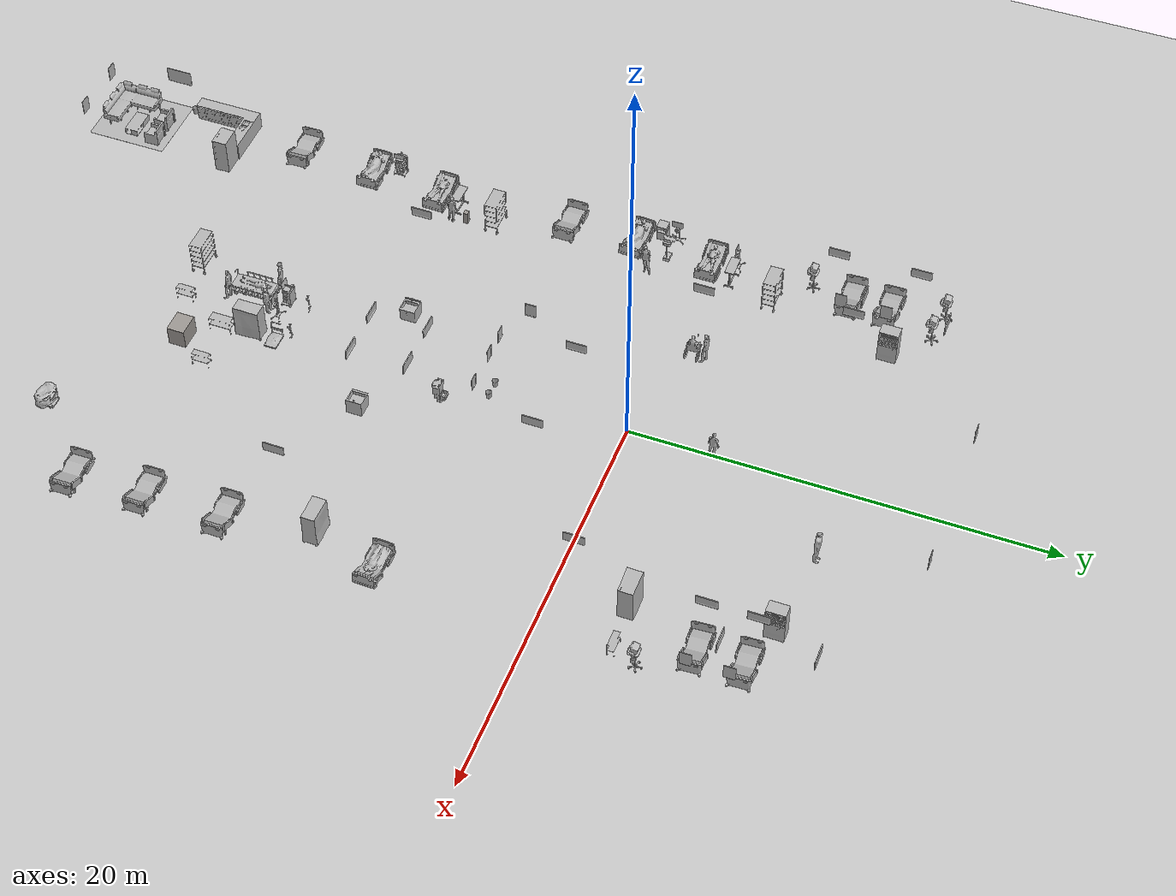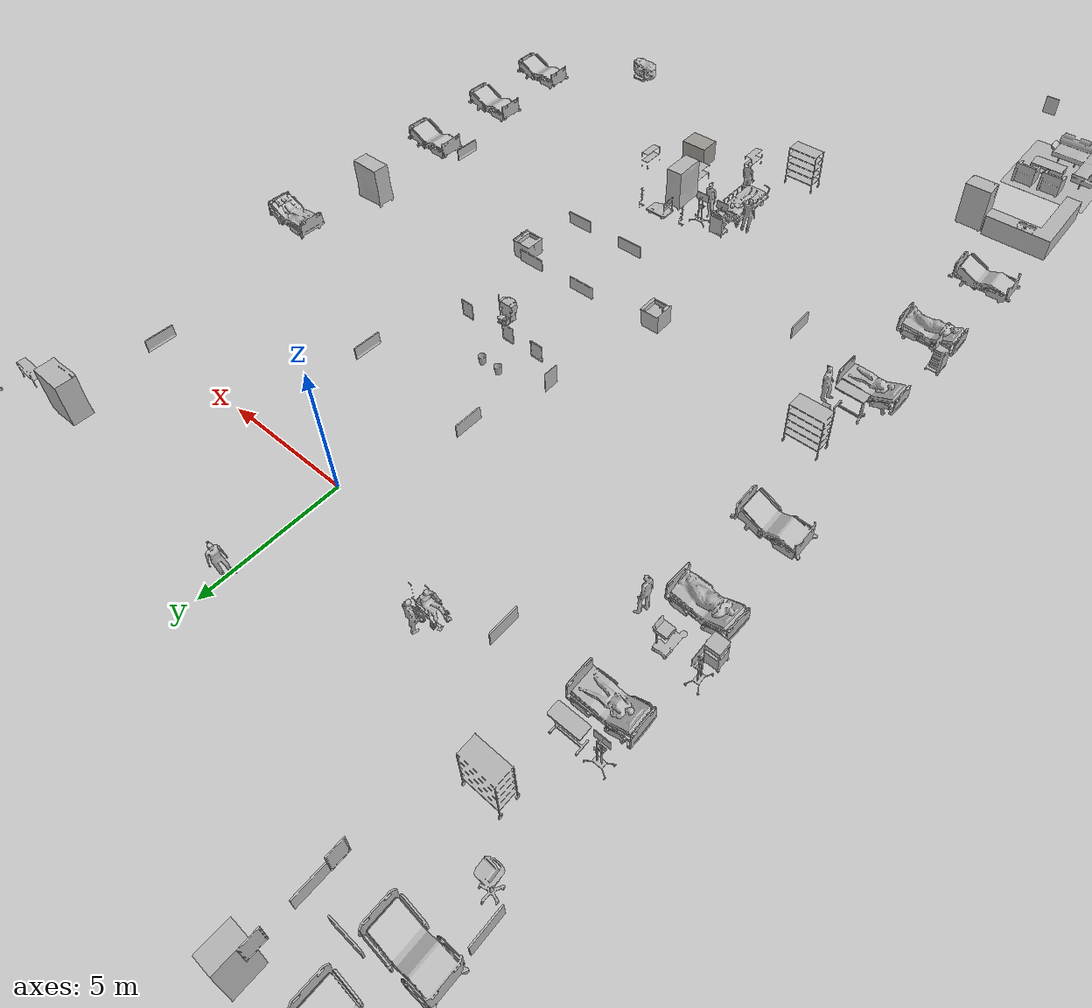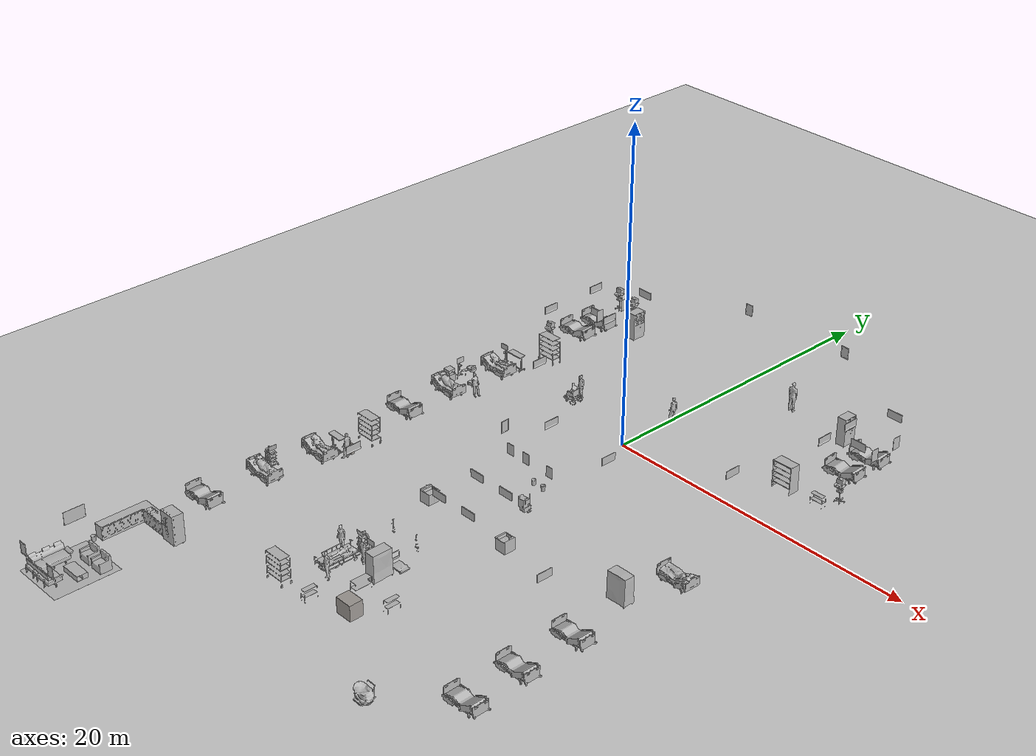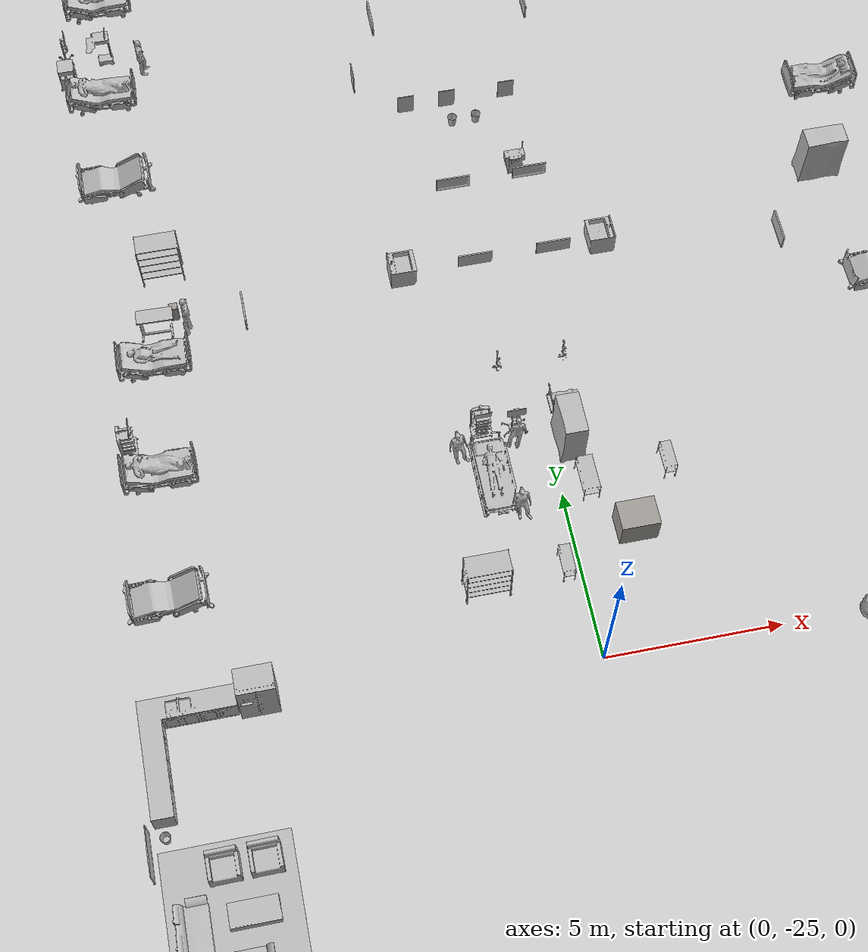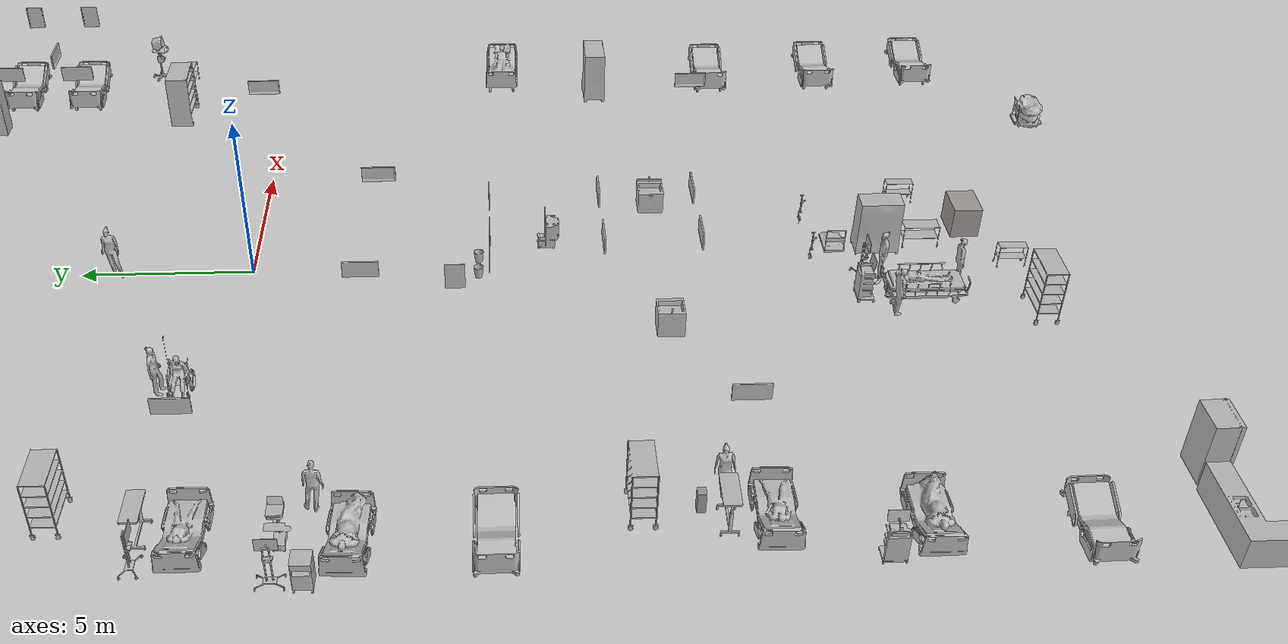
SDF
<sdf version="1.6">
 <world name="world">
  <gravity>0 0 -9.8</gravity>
  <physics default="0" name="default_physics" type="ode">
   <ode>
    <solver>
     <type>quick</type>
     <iters>10</iters>
     <sor>1.3</sor>
     <use_dynamic_moi_rescaling>0</use_dynamic_moi_rescaling>
    </solver>
    <constraints>
     <cfm>0</cfm>
     <erp>0.2</erp>
     <contact_max_correcting_vel>100</contact_max_correcting_vel>
     <contact_surface_layer>0.001</contact_surface_layer>
    </constraints>
   </ode>
   <max_step_size>0.004</max_step_size>
   <real_time_factor>1</real_time_factor>
   <real_time_update_rate>250</real_time_update_rate>
   <magnetic_field>6.0e-6 2.3e-5 -4.2e-5</magnetic_field>
  </physics>
  <scene><ambient>0.6 0.6 0.6 1</ambient><background>0.4 0.4 0.4 1</background><shadows>false</shadows></scene>
  <include><uri>model://sun</uri></include>
  <include><uri>model://ground_plane</uri><pose>0 0 -0.1 0 -0 0</pose></include>
  <model name="CGMClassic_1">
   <include>
    <uri>model://CGMClassic</uri>
    <static>true</static>
    <pose>11.1777 -18.4129 0 0 0 -3.13719</pose>
   </include>
  </model>
  <model name="CGMClassic_2">
   <include>
    <uri>model://CGMClassic</uri>
    <static>true</static>
    <pose>11.1179 -14.6493 0 0 0 -3.13599</pose>
   </include>
  </model>
  <model name="Scrubs_1">
   <include><uri>model://Scrubs</uri><static>true</static><pose>-9.61916 -12.5112 0 0 0 -3.12353</pose></include>
  </model>
  <model name="Scrubs_2">
   <include><uri>model://Scrubs</uri><static>true</static><pose>0.054597 4.05849 0 0 -0 3.12413</pose></include>
  </model>
  <model name="PatientWheelChair_1">
   <include>
    <uri>model://PatientWheelChair</uri>
    <static>true</static>
    <pose>-5.46091 1.23577 0 0 0 -1.54828</pose>
   </include>
  </model>
  <model name="Scrubs_3">
   <include><uri>model://Scrubs</uri><static>true</static><pose>-5.38513 1.82526 0 0 0 -1.63757</pose></include>
  </model>
  <model name="SurgicalTrolley_1">
   <include>
    <uri>model://SurgicalTrolley</uri>
    <static>true</static>
    <pose>11.4301 3.56328 0 0 -0 0</pose>
   </include>
  </model>
  <model name="CGMClassic_3">
   <include>
    <uri>model://CGMClassic</uri>
    <static>true</static>
    <pose>-11.2304 -21.1134 0 0 0 -3.11834</pose>
   </include>
  </model>
  <model name="aws_robomaker_residential_CoffeeTable_01_1">
   <include>
    <uri>model://aws_robomaker_residential_CoffeeTable_01</uri>
    <static>true</static>
    <pose>-10.2383 -29.9144 0 0 -0 0</pose>
   </include>
  </model>
  <model name="aws_robomaker_residential_Sofa_01_1">
   <include>
    <uri>model://aws_robomaker_residential_Sofa_01</uri>
    <static>true</static>
    <pose>-11.077 -30.5544 -1e-05 2.6e-05 -3e-06 1.56984</pose>
   </include>
  </model>
  <model name="aws_robomaker_residential_TV_02_1">
   <include>
    <uri>model://aws_robomaker_residential_TV_02</uri>
    <static>true</static>
    <pose>-12.4122 -28.4594 1.53211 0 -0 3.13999</pose>
   </include>
  </model>
  <model name="aws_robomaker_residential_KitchenCabinet_01_1">
   <include>
    <uri>model://aws_robomaker_residential_KitchenCabinet_01</uri>
    <static>true</static>
    <pose>-11.1379 -25.6941 0 0 -0 0</pose>
   </include>
  </model>
  <model name="aws_robomaker_residential_Refrigerator_01_1">
   <include>
    <uri>model://aws_robomaker_residential_Refrigerator_01</uri>
    <static>true</static>
    <pose>-9.28238 -24.5015 0 0 -0 0</pose>
   </include>
  </model>
  <model name="aws_robomaker_residential_SofaB_01_1">
   <include>
    <uri>model://aws_robomaker_residential_SofaB_01</uri>
    <static>true</static>
    <pose>-10.8238 -28.6662 -5e-06 -1.3e-05 -2e-06 -1.56116</pose>
   </include>
  </model>
  <model name="aws_robomaker_residential_SofaB_01_2">
   <include>
    <uri>model://aws_robomaker_residential_SofaB_01</uri>
    <static>true</static>
    <pose>-9.73697 -28.6538 -3e-06 1.3e-05 -4e-06 -1.56077</pose>
   </include>
  </model>
  <model name="aws_robomaker_residential_PortraitA_01_1">
   <include>
    <uri>model://aws_robomaker_residential_PortraitA_01</uri>
    <static>true</static>
    <pose>1.14738 -6.92303 1.41115 0 -0 0</pose>
   </include>
  </model>
  <model name="aws_robomaker_residential_PortraitD_02_1">
   <include>
    <uri>model://aws_robomaker_residential_PortraitD_02</uri>
    <static>true</static>
    <pose>2.40772 -3.61975 1.54508 0 0 -1.57619</pose>
   </include>
  </model>
  <model name="MopCart3_1">
   <include>
    <uri>model://MopCart3</uri>
    <static>true</static>
    <pose>1.07736 -8.59036 -6.7e-05 0 1e-06 0</pose>
   </include>
  </model>
  <model name="aws_robomaker_residential_PortraitA_01_2">
   <include>
    <uri>model://aws_robomaker_residential_PortraitA_01</uri>
    <static>true</static>
    <pose>-0.706092 -6.93108 1.41115 0 -0 0</pose>
   </include>
  </model>
  <model name="aws_robomaker_residential_PortraitA_01_3">
   <include>
    <uri>model://aws_robomaker_residential_PortraitA_01</uri>
    <static>true</static>
    <pose>-1.97245 -6.9216 1.41115 0 -0 0</pose>
   </include>
  </model>
  <model name="aws_robomaker_residential_PortraitD_02_2">
   <include>
    <uri>model://aws_robomaker_residential_PortraitD_02</uri>
    <static>true</static>
    <pose>-2.43341 -3.38621 1.54508 0 -0 1.57083</pose>
   </include>
  </model>
  <model name="ElderLadyPatient_1">
   <include>
    <uri>model://ElderLadyPatient</uri>
    <static>true</static>
    <pose>-10.9972 0.231354 0.001654 0 -0 0</pose>
   </include>
  </model>
  <model name="ElderLadyPatient_2">
   <include>
    <uri>model://ElderLadyPatient</uri>
    <static>true</static>
    <pose>-10.8133 -13.5925 0.001657 0 -2e-06 -0.025052</pose>
   </include>
  </model>
  <model name="CGMClassic_4">
   <include>
    <uri>model://CGMClassic</uri>
    <static>true</static>
    <pose>-11.0878 -7.00992 0 0 -0 3.1351</pose>
   </include>
  </model>
  <model name="aws_robomaker_residential_Trash_01_1">
   <include>
    <uri>model://aws_robomaker_residential_Trash_01</uri>
    <static>true</static>
    <pose>0.316178 -6.58235 0.000903 0 -2e-06 0</pose>
   </include>
  </model>
  <model name="aws_robomaker_residential_Trash_01_2">
   <include>
    <uri>model://aws_robomaker_residential_Trash_01</uri>
    <static>true</static>
    <pose>-0.436645 -6.57758 0.000903 -1e-06 -1e-06 0</pose>
   </include>
  </model>
  <model name="aws_robomaker_residential_Trash_01_3">
   <include>
    <uri>model://aws_robomaker_residential_Trash_01</uri>
    <static>true</static>
    <pose>-12.1773 -27.6293 0.000894 -1e-06 -1e-06 0</pose>
   </include>
  </model>
  <model name="aws_robomaker_residential_PortraitE_01_1">
   <include>
    <uri>model://aws_robomaker_residential_PortraitE_01</uri>
    <static>true</static>
    <pose>-9.06141 -31.9238 1.38136 0 -0 0</pose>
   </include>
  </model>
  <model name="aws_robomaker_residential_PortraitE_01_2">
   <include>
    <uri>model://aws_robomaker_residential_PortraitE_01</uri>
    <static>true</static>
    <pose>-11.7398 -31.9011 1.38136 0 -0 0</pose>
   </include>
  </model>
  <model name="InstrumentCart1_1">
   <include>
    <uri>model://InstrumentCart1</uri>
    <static>true</static>
    <pose>-11.8071 -16.1825 0 0 -0 1.56702</pose>
   </include>
  </model>
  <model name="ElderMalePatient_1">
   <include>
    <uri>model://ElderMalePatient</uri>
    <static>true</static>
    <pose>-11.1165 -17.2377 0.001656 0 3e-06 0</pose>
   </include>
  </model>
  <model name="InstrumentCart2_1">
   <include>
    <uri>model://InstrumentCart2</uri>
    <static>true</static>
    <pose>-12.0906 -1.87329 0.051875 0 -0 1.57773</pose>
   </include>
  </model>
  <model name="InstrumentCart2_2">
   <include>
    <uri>model://InstrumentCart2</uri>
    <static>true</static>
    <pose>-11.5231 1.34237 0 0 -0 0</pose>
   </include>
  </model>
  <model name="aws_robomaker_residential_Carpet_01_1">
   <include>
    <uri>model://aws_robomaker_residential_Carpet_01</uri>
    <static>true</static>
    <pose>-10.7338 -29.9243 0 0 -0 0</pose>
   </include>
  </model>
  <model name="CGMClassic_5">
   <include>
    <uri>model://CGMClassic</uri>
    <static>true</static>
    <pose>-11.0106 8.9505 -0.008203 -0.035019 -0.000392 3.13388</pose>
   </include>
  </model>
  <model name="CGMClassic_6">
   <include>
    <uri>model://CGMClassic</uri>
    <static>true</static>
    <pose>-11.025 7.10335 0 -0.035021 1.8e-05 -3.13762</pose>
   </include>
  </model>
  <model name="BedTable_1">
   <include>
    <uri>model://BedTable</uri>
    <static>true</static>
    <pose>-10.4759 1.39442 0.001184 0 -3e-06 0</pose>
   </include>
  </model>
  <model name="BedTable_2">
   <include>
    <uri>model://BedTable</uri>
    <static>true</static>
    <pose>-10.5874 -12.5084 0.001189 0 -0 3.11588</pose>
   </include>
  </model>
  <model name="BedsideTable_1">
   <include>
    <uri>model://BedsideTable</uri>
    <static>true</static>
    <pose>-12.1499 -2.63111 0.00018 1e-06 -0 -0.00878</pose>
   </include>
  </model>
  <model name="TrolleyBedPatient_1">
   <include>
    <uri>model://TrolleyBedPatient</uri>
    <static>true</static>
    <pose>-1.83202 -19.2612 0 0 -0 0</pose>
   </include>
  </model>
  <model name="Scrubs_4">
   <include><uri>model://Scrubs</uri><static>true</static><pose>-0.93616 -18.2252 0 0 -0 1.62572</pose></include>
  </model>
  <model name="Shower_1">
   <include><uri>model://Shower</uri><static>true</static><pose>-1.07422 -16.1332 0 0 -0 0</pose></include>
  </model>
  <model name="Shower_2">
   <include><uri>model://Shower</uri><static>true</static><pose>0.853327 -16.1492 0 0 -0 0</pose></include>
  </model>
  <model name="SurgicalTrolley_2">
   <include>
    <uri>model://SurgicalTrolley</uri>
    <static>true</static>
    <pose>-0.411421 -22.2085 0 0 0 -1.58175</pose>
   </include>
  </model>
  <model name="SurgicalTrolley_3">
   <include>
    <uri>model://SurgicalTrolley</uri>
    <static>true</static>
    <pose>3.11747 -19.6565 0 0 -0 1.57031</pose>
   </include>
  </model>
  <model name="SurgicalTrolleyMed_1">
   <include>
    <uri>model://SurgicalTrolleyMed</uri>
    <static>true</static>
    <pose>0.770804 -19.7749 0 0 0 -1.56798</pose>
   </include>
  </model>
  <model name="Scrubs_5">
   <include>
    <uri>model://Scrubs</uri>
    <static>true</static>
    <pose>-2.66657 -18.3733 0 -0.002221 -0.006608 -1.24025</pose>
   </include>
  </model>
  <model name="InstrumentCart1_2">
   <include>
    <uri>model://InstrumentCart1</uri>
    <static>true</static>
    <pose>-11.8071 -16.1825 0 0 -0 1.56702</pose>
   </include>
  </model>
  <model name="InstrumentCart2_3">
   <include>
    <uri>model://InstrumentCart2</uri>
    <static>true</static>
    <pose>-0.869537 -17.7436 0 0 0 -0.002595</pose>
   </include>
  </model>
  <model name="StorageRackCovered_1">
   <include>
    <uri>model://StorageRackCovered</uri>
    <static>true</static>
    <pose>0.546476 -18.3985 -0 0 -0 1.56584</pose>
   </include>
  </model>
  <model name="StorageRack_2">
   <include>
    <uri>model://StorageRack</uri>
    <static>true</static>
    <pose>-2.69866 -22.4178 -8e-06 0 4e-06 0</pose>
   </include>
  </model>
  <model name="KitchenSink_1">
   <include>
    <uri>model://KitchenSink</uri>
    <static>true</static>
    <pose>3.06236 -11.8809 -0.001614 0 -0 3.1391</pose>
   </include>
  </model>
  <model name="KitchenSink_2">
   <include>
    <uri>model://KitchenSink</uri>
    <static>true</static>
    <pose>-3.09305 -11.8988 -0.001609 0 -0 0</pose>
   </include>
  </model>
  <model name="aws_robomaker_residential_PortraitD_01_1">
   <include>
    <uri>model://aws_robomaker_residential_PortraitD_01</uri>
    <static>true</static>
    <pose>-1.14723 -10.143 1.57344 0 -0 0</pose>
   </include>
  </model>
  <model name="aws_robomaker_residential_PortraitD_01_2">
   <include>
    <uri>model://aws_robomaker_residential_PortraitD_01</uri>
    <static>true</static>
    <pose>1.16956 -10.1327 1.57344 0 -0 0</pose>
   </include>
  </model>
  <model name="aws_robomaker_residential_PortraitD_01_3">
   <include>
    <uri>model://aws_robomaker_residential_PortraitD_01</uri>
    <static>true</static>
    <pose>1.2703 -12.9084 1.57344 0 0 -3.14134</pose>
   </include>
  </model>
  <model name="aws_robomaker_residential_PortraitD_01_4">
   <include>
    <uri>model://aws_robomaker_residential_PortraitD_01</uri>
    <static>true</static>
    <pose>-1.06108 -12.9155 1.57344 0 0 -3.14134</pose>
   </include>
  </model>
  <model name="aws_robomaker_residential_PortraitD_02_3">
   <include>
    <uri>model://aws_robomaker_residential_PortraitD_02</uri>
    <static>true</static>
    <pose>7.89294 -13.6155 1.54508 0 0 -1.57619</pose>
   </include>
  </model>
  <model name="aws_robomaker_residential_PortraitD_02_4">
   <include>
    <uri>model://aws_robomaker_residential_PortraitD_02</uri>
    <static>true</static>
    <pose>7.88791 0.445446 1.54508 0 0 -1.57619</pose>
   </include>
  </model>
  <model name="aws_robomaker_residential_PortraitD_02_5">
   <include>
    <uri>model://aws_robomaker_residential_PortraitD_02</uri>
    <static>true</static>
    <pose>-7.92095 0.84255 1.54508 0 -0 1.57083</pose>
   </include>
  </model>
  <model name="aws_robomaker_residential_PortraitD_02_6">
   <include>
    <uri>model://aws_robomaker_residential_PortraitD_02</uri>
    <static>true</static>
    <pose>-7.90937 -13.3417 1.54508 0 -0 1.57083</pose>
   </include>
  </model>
  <model name="aws_robomaker_residential_PortraitD_02_7">
   <include>
    <uri>model://aws_robomaker_residential_PortraitD_02</uri>
    <static>true</static>
    <pose>-12.3841 6.01232 1.54508 0 -0 1.57083</pose>
   </include>
  </model>
  <model name="aws_robomaker_residential_PortraitD_02_8">
   <include>
    <uri>model://aws_robomaker_residential_PortraitD_02</uri>
    <static>true</static>
    <pose>-12.4276 9.98828 1.54508 0 -0 1.57083</pose>
   </include>
  </model>
  <model name="aws_robomaker_residential_PortraitE_02_1">
   <include>
    <uri>model://aws_robomaker_residential_PortraitE_02</uri>
    <static>true</static>
    <pose>-9.08927 9.19494 1.84129 0 0 -1.5625</pose>
   </include>
  </model>
  <model name="aws_robomaker_residential_PortraitD_02_9">
   <include>
    <uri>model://aws_robomaker_residential_PortraitD_02</uri>
    <static>true</static>
    <pose>-8.94468 7.73571 1.54508 0 -0 1.57083</pose>
   </include>
  </model>
  <model name="aws_robomaker_residential_PortraitE_02_2">
   <include>
    <uri>model://aws_robomaker_residential_PortraitE_02</uri>
    <static>true</static>
    <pose>-9.08305 7.04089 1.84129 0 0 -1.5625</pose>
   </include>
  </model>
  <model name="aws_robomaker_residential_PortraitD_01_5">
   <include>
    <uri>model://aws_robomaker_residential_PortraitD_01</uri>
    <static>true</static>
    <pose>-9.9148 11.9172 1.40573 0 -0 0</pose>
   </include>
  </model>
  <model name="aws_robomaker_residential_PortraitD_01_6">
   <include>
    <uri>model://aws_robomaker_residential_PortraitD_01</uri>
    <static>true</static>
    <pose>-10.2134 7.89752 1.40573 0 -0 0</pose>
   </include>
  </model>
  <model name="CGMClassic_7">
   <include>
    <uri>model://CGMClassic</uri>
    <static>true</static>
    <pose>10.6166 9.06291 -0.008203 -0.03501 0.000885 -3.11285</pose>
   </include>
  </model>
  <model name="CGMClassic_8">
   <include>
    <uri>model://CGMClassic</uri>
    <static>true</static>
    <pose>10.6006 6.90956 -0.008203 -0.035003 0.001133 -3.10576</pose>
   </include>
  </model>
  <model name="aws_robomaker_residential_PortraitD_02_10">
   <include>
    <uri>model://aws_robomaker_residential_PortraitD_02</uri>
    <static>true</static>
    <pose>9.06517 6.78742 1.54508 0 -0 1.57083</pose>
   </include>
  </model>
  <model name="aws_robomaker_residential_PortraitD_02_11">
   <include>
    <uri>model://aws_robomaker_residential_PortraitD_02</uri>
    <static>true</static>
    <pose>9.06517 9.05858 1.54508 0 -0 1.57083</pose>
   </include>
  </model>
  <model name="aws_robomaker_residential_PortraitE_02_3">
   <include>
    <uri>model://aws_robomaker_residential_PortraitE_02</uri>
    <static>true</static>
    <pose>12.3972 6.98849 1.84129 0 0 -1.5625</pose>
   </include>
  </model>
  <model name="aws_robomaker_residential_PortraitE_02_4">
   <include>
    <uri>model://aws_robomaker_residential_PortraitE_02</uri>
    <static>true</static>
    <pose>12.3972 8.87466 1.84129 0 0 -1.5625</pose>
   </include>
  </model>
  <model name="aws_robomaker_residential_PortraitE_02_5">
   <include>
    <uri>model://aws_robomaker_residential_PortraitE_02</uri>
    <static>true</static>
    <pose>-3.4385 -6.00525 1.84129 0 -0 1.56777</pose>
   </include>
  </model>
  <model name="aws_robomaker_residential_PortraitD_01_7">
   <include>
    <uri>model://aws_robomaker_residential_PortraitD_01</uri>
    <static>true</static>
    <pose>10.596 7.88308 1.40573 0 -0 0</pose>
   </include>
  </model>
  <model name="aws_robomaker_residential_PortraitD_01_8">
   <include>
    <uri>model://aws_robomaker_residential_PortraitD_01</uri>
    <static>true</static>
    <pose>9.98896 11.914 1.40573 0 -0 0</pose>
   </include>
  </model>
  <model name="ParkingTrolleyMin_1">
   <include>
    <uri>model://ParkingTrolleyMin</uri>
    <static>true</static>
    <pose>0.715846 -17.1496 -0.000121 -1e-06 -0 0</pose>
   </include>
  </model>
  <model name="Scrubs_6">
   <include><uri>model://Scrubs</uri><static>true</static><pose>-1.29468 -20.4093 0 0 0 -1.51066</pose></include>
  </model>
  <model name="MalePatientBed_1">
   <include>
    <uri>model://MalePatientBed</uri>
    <static>true</static>
    <pose>11.3771 -7.38891 0.001658 -1e-06 1e-06 3.11598</pose>
   </include>
  </model>
  <model name="CGMClassic_9">
   <include>
    <uri>model://CGMClassic</uri>
    <static>true</static>
    <pose>11.3613 -21.8867 0 0 0 -3.12292</pose>
   </include>
  </model>
  <model name="StorageRackCoverOpen_1">
   <include>
    <uri>model://StorageRackCoverOpen</uri>
    <static>true</static>
    <pose>9.15016 3.44263 -9e-06 1e-06 2e-06 0</pose>
   </include>
  </model>
  <model name="StorageRack_3">
   <include><uri>model://StorageRack</uri><static>true</static><pose>-10.1178 -10.4694 -0 0 -0 0</pose></include>
  </model>
  <model name="StorageRack_4">
   <include>
    <uri>model://StorageRack</uri>
    <static>true</static>
    <pose>-9.91557 3.5644 -9e-06 1e-06 1e-06 -0.000273</pose>
   </include>
  </model>
  <model name="StorageRackCovered_2">
   <include>
    <uri>model://StorageRackCovered</uri>
    <static>true</static>
    <pose>10.294 -10.577 -7e-06 3e-06 -0 3.13389</pose>
   </include>
  </model>
  <model name="InstrumentCart1_3">
   <include>
    <uri>model://InstrumentCart1</uri>
    <static>true</static>
    <pose>-1.83539 -17.5879 0 0 -0 0</pose>
   </include>
  </model>
  <model name="ParkingTrolleyMax_1">
   <include>
    <uri>model://ParkingTrolleyMax</uri>
    <static>true</static>
    <pose>7.71054 -25.1326 -0.000121 1e-06 -0 -1.59536</pose>
   </include>
  </model>
  <model name="ElderMalePatient_2">
   <include>
    <uri>model://ElderMalePatient</uri>
    <static>true</static>
    <pose>-11.2471 -3.5813 0.001656 0 -0 -0.054192</pose>
   </include>
  </model>
  <model name="aws_robomaker_residential_PortraitE_02_6">
   <include>
    <uri>model://aws_robomaker_residential_PortraitE_02</uri>
    <static>true</static>
    <pose>-3.74211 14.8725 1.54379 0 -0 0</pose>
   </include>
  </model>
  <model name="aws_robomaker_residential_PortraitE_01_3">
   <include>
    <uri>model://aws_robomaker_residential_PortraitE_01</uri>
    <static>true</static>
    <pose>3.85701 14.8779 1.69742 0 -0 0</pose>
   </include>
  </model>
  <model name="XRayMachine_1">
   <include><uri>model://XRayMachine</uri><static>true</static><pose>1.79424 -21.3329 0 0 -0 0</pose></include>
  </model>
  <model name="BloodPressureMonitor_1">
   <include>
    <uri>model://BloodPressureMonitor</uri>
    <static>true</static>
    <pose>-9.96258 -11.9361 0 0 -0 0</pose>
   </include>
  </model>
  <model name="BMWCart_1">
   <include><uri>model://BMWCart</uri><static>true</static><pose>-10.931 -1.9483 0 0 -0 0</pose></include>
  </model>
  <model name="Scrubs_7">
   <include><uri>model://Scrubs</uri><static>true</static><pose>-9.75875 -2.67552 0 0 -0 0</pose></include>
  </model>
  <model name="BPCart_1">
   <include>
    <uri>model://BPCart</uri>
    <static>true</static>
    <pose>-10.1788 11.173 0.003446 1e-06 -0 0.003096</pose>
   </include>
  </model>
  <model name="BPCart_2">
   <include><uri>model://BPCart</uri><static>true</static><pose>12.0072 4.64765 0 0 -0 0</pose></include>
  </model>
  <model name="BPCart_3">
   <include><uri>model://BPCart</uri><static>true</static><pose>-11.7236 11.4294 0 0 -0 0</pose></include>
  </model>
  <model name="BPCart_4">
   <include>
    <uri>model://BPCart</uri>
    <static>true</static>
    <pose>-11.4703 5.05999 0.003446 1e-06 -0 0.003096</pose>
   </include>
  </model>
  <model name="VendingMachine_1">
   <include>
    <uri>model://VendingMachine</uri>
    <static>true</static>
    <pose>-8.45694 9.63064 0 0 -0 0</pose>
   </include>
  </model>
  <model name="VendingMachine_2">
   <include>
    <uri>model://VendingMachine</uri>
    <static>true</static>
    <pose>8.35378 9.64852 -3e-06 -6e-06 0 0</pose>
   </include>
  </model>
  <include><uri>model://PersonToFollow</uri><pose>4 10 0 0 0 3.14</pose></include>
 </world>
</sdf>

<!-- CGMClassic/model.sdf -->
<sdf version="1.6">
  <model name="CGMClassic">
   <static>true</static>
    <link name="body">
      <pose>0 0 0 0 0 0</pose>

      <visual name="visual">
        <geometry>
          <mesh>
            <uri>model://CGMClassic/meshes/CGMClassic.obj</uri>
            <scale>0.01 0.01 0.01</scale>
          </mesh>
        </geometry>
      </visual>

      <collision name="collision">
        <geometry>
          <mesh>
            <uri>model://CGMClassic/meshes/CGMClassic.obj</uri>
            <scale>0.01 0.01 0.01</scale>
          </mesh>
        </geometry>
      </collision>

    </link>
  </model>
</sdf>

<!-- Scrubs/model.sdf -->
<sdf version="1.6">
  <model name='Scrubs'>
   <static>true</static>
    <link name="body">
      <pose>0 0 0 0 0 0</pose>

      <visual name="visual">
        <geometry>
          <mesh>
            <uri>model://Scrubs/meshes/scrubs.obj</uri>
          </mesh>
        </geometry>
      </visual>

      <collision name="collision">
        <geometry>
          <mesh>
            <uri>model://Scrubs/meshes/Scrubs_Col.obj</uri>
          </mesh>
        </geometry>
      </collision>

    </link>
  </model>
</sdf>

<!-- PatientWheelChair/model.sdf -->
<sdf version="1.6">
  <model name="PatientWheelChair">
   <static>true</static>
    <link name="body">
      <pose>0 0 0 0 0 0</pose>

      <visual name="visual">
        <geometry>
          <mesh>
            <uri>model://PatientWheelChair/meshes/PatientWheelChair.obj</uri>
          </mesh>
        </geometry>
      </visual>

      <collision name="collision">
        <geometry>
          <mesh>
            <uri>model://PatientWheelChair/meshes/PatientWheelChair_Col.obj</uri>
          </mesh>
        </geometry>
      </collision>

    </link>
  </model>
</sdf>

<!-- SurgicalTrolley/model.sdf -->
<sdf version="1.6">
  <model name='SurgicalTrolley'>
   <static>true</static>
    <link name="body">
      <pose>0 0 0 0 0 0</pose>

      <visual name="visual">
        <geometry>
          <mesh>
            <uri>model://SurgicalTrolley/meshes/trolley.obj</uri>
          </mesh>
        </geometry>
      </visual>

      <collision name="collision">
        <geometry>
          <mesh>
            <uri>model://SurgicalTrolley/meshes/trolley.obj</uri>
          </mesh>
        </geometry>
      </collision>

    </link>
  </model>
</sdf>

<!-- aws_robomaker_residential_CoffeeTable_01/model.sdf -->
<sdf version="1.6">
  <model name="aws_robomaker_residential_CoffeeTable_01">
    <link name="link">
      <inertial>
        <mass>21.7</mass>

        <inertia>
          <ixx>0.8137499999999998</ixx>
          <ixy>0</ixy>
          <ixz>0</ixz>
          <iyy>2.76675</iyy>
          <iyz>0</iyz>
          <izz>3.254</izz>
        </inertia>

      </inertial>

      <collision name="collision">
        <geometry>
          <mesh>
            <uri>model://aws_robomaker_residential_CoffeeTable_01/meshes/aws_CoffeeTable_01_collision.DAE</uri>
            <scale>1 1 1</scale>
          </mesh>
        </geometry>

        <surface>
          <contact>
            <ode>
              <max_vel>0.01</max_vel>
            </ode>
          </contact>
         </surface>
      </collision>

      <visual name="visual">
	    <geometry>
          <mesh>
            <uri>model://aws_robomaker_residential_CoffeeTable_01/meshes/aws_CoffeeTable_01_visual.DAE</uri>
          </mesh>
        </geometry>
      <meta> <layer> 1 </layer></meta>
</visual>
    </link>
    <static>1</static>
  </model>
</sdf>

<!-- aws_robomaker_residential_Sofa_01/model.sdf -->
<sdf version="1.6">
  <model name="aws_robomaker_residential_Sofa_01">
    <link name="link">

      <inertial>
        <mass>72.5</mass>
      </inertial>

      <collision name="collision">

        <geometry>
          <mesh>
            <uri>model://aws_robomaker_residential_Sofa_01/meshes/aws_Sofa_01_collision.DAE</uri>
            <scale>1 1 1</scale>
          </mesh>
        </geometry>

      </collision>
      <visual name="visual">
	    <geometry>
          <mesh>
            <uri>model://aws_robomaker_residential_Sofa_01/meshes/aws_Sofa_01_visual.DAE</uri>
          </mesh>
        </geometry>
      <meta> <layer> 1 </layer></meta>
</visual>
    </link>
  </model>
</sdf>

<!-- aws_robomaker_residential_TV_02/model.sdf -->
<sdf version="1.6">
  <model name="aws_robomaker_residential_TV_02">
    <link name="link">
      <inertial>
        <mass>1</mass>
      </inertial>
      <collision name="collision">
        <geometry>
          <mesh>
            <uri>model://aws_robomaker_residential_TV_02/meshes/aws_TV_01_collision.DAE</uri>
            <scale>1 1 1</scale>
          </mesh>
        </geometry>
      </collision>
      <visual name="visual">
	    <geometry>
          <mesh>
            <uri>model://aws_robomaker_residential_TV_02/meshes/aws_TV_01_visual.DAE</uri>
          </mesh>
        </geometry>
      <meta> <layer> 2 </layer></meta>
</visual>
    </link>
	<static>1</static>
  </model>
</sdf>

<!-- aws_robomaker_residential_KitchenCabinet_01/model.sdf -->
<sdf version="1.6">
  <model name="aws_robomaker_residential_KitchenCabinet_01">
    <link name="link">
      <inertial>
        <mass>1</mass>
      </inertial>
      <collision name="collision">
        <laser_retro>0</laser_retro>
        <max_contacts>10</max_contacts>
        <geometry>
          <mesh>
            <uri>model://aws_robomaker_residential_KitchenCabinet_01/meshes/aws_KitchenCabinet_01_collision.DAE</uri>
            <scale>1 1 1</scale>
          </mesh>
        </geometry>
      </collision>
      <visual name="visual">
	    <geometry>
          <mesh>
            <uri>model://aws_robomaker_residential_KitchenCabinet_01/meshes/aws_KitchenCabinet_01_visual.DAE</uri>
          </mesh>
        </geometry>
      <meta> <layer> 1 </layer></meta>
</visual>
    </link>

    <static>1</static>
  </model>
</sdf>

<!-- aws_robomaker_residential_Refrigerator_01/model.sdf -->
<sdf version="1.6">
  <model name="aws_robomaker_residential_Refrigerator_01">
    <link name="link">
      <inertial>
        <mass>1</mass>
      </inertial>
      <collision name="collision">
        <geometry>
          <mesh>
            <uri>model://aws_robomaker_residential_Refrigerator_01/meshes/aws_Refrigerator_01_collision.DAE</uri>
            <scale>1 1 1</scale>
          </mesh>
        </geometry>
      </collision>
      <visual name="visual">
	    <geometry>
          <mesh>
            <uri>model://aws_robomaker_residential_Refrigerator_01/meshes/aws_Refrigerator_01_visual.DAE</uri>
          </mesh>
        </geometry>
      <meta> <layer> 1 </layer></meta>
</visual>
    </link>
    <static>1</static>
  </model>
</sdf>

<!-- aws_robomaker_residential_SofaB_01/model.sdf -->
<sdf version="1.6">
  <model name="aws_robomaker_residential_SofaB_01">
    <link name="link">

      <inertial>
        <mass>72.5</mass>
      </inertial>

      <collision name="collision">

        <geometry>
          <mesh>
            <uri>model://aws_robomaker_residential_SofaB_01/meshes/aws_SofaB_01_collision.DAE</uri>
            <scale>1 1 1</scale>
          </mesh>
        </geometry>

      </collision>
      <visual name="visual">
	    <geometry>
          <mesh>
            <uri>model://aws_robomaker_residential_SofaB_01/meshes/aws_SofaB_01_visual.DAE</uri>
          </mesh>
        </geometry>
      <meta> <layer> 1 </layer></meta>
</visual>
    </link>
  </model>
</sdf>

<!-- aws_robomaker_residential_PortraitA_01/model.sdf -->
<sdf version="1.6">
  <model name="aws_robomaker_residential_PortraitA_01">
    <link name="link">
      <inertial>
        <mass>1</mass>
      </inertial>
      <collision name="collision">
        <geometry>
          <mesh>
            <uri>model://aws_robomaker_residential_PortraitA_01/meshes/aws_PortraitA_01_collision.DAE</uri>
            <scale>1 1 1</scale>
          </mesh>
        </geometry>
      </collision>
      <visual name="visual">
	    <geometry>
          <mesh>
            <uri>model://aws_robomaker_residential_PortraitA_01/meshes/aws_PortraitA_01_visual.DAE</uri>
          </mesh>
        </geometry>
      <meta> <layer> 2 </layer></meta>
</visual>
    </link>
	<static>1</static>
  </model>
</sdf>

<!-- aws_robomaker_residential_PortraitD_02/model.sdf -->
<sdf version="1.6">
  <model name="aws_robomaker_residential_PortraitD_02">
    <link name="link">

      <inertial>
        <mass>1.5</mass>
      </inertial>

      <collision name="collision">
        <geometry>
          <mesh>
            <uri>model://aws_robomaker_residential_PortraitD_02/meshes/aws_PortraitD_01_collision.DAE</uri>
            <scale>1 1 1</scale>
          </mesh>
        </geometry>

      </collision>

      <visual name="visual">
	    <geometry>
          <mesh>
            <uri>model://aws_robomaker_residential_PortraitD_02/meshes/aws_PortraitD_01_visual.DAE</uri>
          </mesh>
        </geometry>
      <meta> <layer> 2 </layer></meta>
</visual>
    </link>
	<static>1</static>
  </model>
</sdf>

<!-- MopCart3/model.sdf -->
<sdf version="1.5">
  <model name="MopCart3">
    <link name="link">
      <pose>0 0 0 0 0 0</pose>

        <visual name="visual">
          <geometry>
            <mesh><uri>model://MopCart3/meshes/MopCart3.obj</uri></mesh>
          </geometry>
        </visual>

        <collision name="collision">
          <geometry>
            <mesh><uri>model://MopCart3/meshes/MopCart3.obj</uri></mesh>
          </geometry>
        </collision>

    </link>
  </model>
</sdf>

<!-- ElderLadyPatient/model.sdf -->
<sdf version="1.6">
  <model name='ElderLadyPatient'>
    <link name="body">
      <pose>0 0 0 0 0 0</pose>

      <visual name="visual">
        <geometry>
          <mesh>
            <uri>model://ElderLadyPatient/meshes/ElderFemale.obj</uri>
          </mesh>
        </geometry>
      </visual>

      <collision name="collision">
        <geometry>
          <mesh>
            <uri>model://ElderLadyPatient/meshes/ElderFemale.obj</uri>
          </mesh>
        </geometry>
      </collision>

    </link>
  </model>
</sdf>

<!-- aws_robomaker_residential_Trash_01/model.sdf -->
<sdf version="1.6">
  <model name="aws_robomaker_residential_Trash_01">
    <link name="link">

      <inertial>

        <mass>0.1</mass>
        <inertia>
            <ixy>0</ixy>
            <ixz>0</ixz>
            <iyz>0</iyz>
            <ixx>0.05288</ixx>
            <iyy>0.05288</iyy>
            <izz>0.09132</izz>
          </inertia>
      </inertial>

      <collision name="collision">
        <geometry>
          <mesh>
            <uri>model://aws_robomaker_residential_Trash_01/meshes/aws_Trash_01_collision.DAE</uri>
            <scale>1 1 1</scale>
          </mesh>
        </geometry>

      </collision>

      <visual name="visual">
	    <geometry>
          <mesh>
            <uri>model://aws_robomaker_residential_Trash_01/meshes/aws_Trash_01_visual.DAE</uri>
          </mesh>
        </geometry>
      <meta> <layer> 1 </layer></meta>
</visual>
    </link>
  </model>
</sdf>

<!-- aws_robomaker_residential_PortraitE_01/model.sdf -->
<sdf version="1.6">
  <model name="aws_robomaker_residential_PortraitE_01">
    <link name="link">
      <inertial>
        <mass>1</mass>
      </inertial>
      <collision name="collision">
        <geometry>
          <mesh>
            <uri>model://aws_robomaker_residential_PortraitE_01/meshes/aws_PortraitE_01_collision.DAE</uri>
            <scale>1 1 1</scale>
          </mesh>
        </geometry>
      </collision>
      <visual name="visual">
	    <geometry>
          <mesh>
            <uri>model://aws_robomaker_residential_PortraitE_01/meshes/aws_PortraitE_01_visual.DAE</uri>
          </mesh>
        </geometry>
      <meta> <layer> 2 </layer></meta>
</visual>
    </link>
	<static>1</static>
  </model>
</sdf>

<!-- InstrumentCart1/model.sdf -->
<sdf version="1.6">
  <model name="InstrumentCart1">
   <static>true</static>
    <link name="body">
      <pose>0 0 0 0 0 0</pose>

      <visual name="visual">
        <geometry>
          <mesh>
            <uri>model://InstrumentCart1/meshes/InstrumentCart1.obj</uri>
          </mesh>
        </geometry>
      </visual>

      <collision name="collision">
        <geometry>
          <mesh>
            <uri>model://InstrumentCart1/meshes/InstrumentCart1.obj</uri>
          </mesh>
        </geometry>
      </collision>

    </link>
  </model>
</sdf>

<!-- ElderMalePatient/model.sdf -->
<sdf version="1.5">
  <model name="ElderMalePatient">
    <link name="link">
      <pose>0 0 0 0 0 0</pose>

        <visual name="visual">
          <geometry>
            <mesh><uri>model://ElderMalePatient/meshes/ElderMalePatient.obj</uri></mesh>
          </geometry>
        </visual>

        <collision name="collision">
          <geometry>
            <mesh><uri>model://ElderMalePatient/meshes/ElderMalePatient.obj</uri></mesh>
          </geometry>
        </collision>

    </link>
  </model>
</sdf>

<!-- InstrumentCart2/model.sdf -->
<sdf version="1.6">
  <model name="InstrumentCart2">
   <static>true</static>
    <link name="body">
      <pose>0 0 0 0 0 0</pose>

      <visual name="visual">
        <geometry>
          <mesh>
            <uri>model://InstrumentCart2/meshes/InstrumentCart2.obj</uri>
          </mesh>
        </geometry>
      </visual>

      <collision name="collision">
        <geometry>
          <mesh>
            <uri>model://InstrumentCart2/meshes/InstrumentCart2.obj</uri>
          </mesh>
        </geometry>
      </collision>

    </link>
  </model>
</sdf>

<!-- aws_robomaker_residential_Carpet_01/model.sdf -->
<sdf version="1.6">
  <model name="aws_robomaker_residential_Carpet_01">
    <link name="link">
      <inertial>
        <mass>8.1</mass>
      </inertial>

      <collision name="collision">

        <geometry>
          <mesh>
            <uri>model://aws_robomaker_residential_Carpet_01/meshes/aws_Carpet_01_collision.DAE</uri>
            <scale>1 1 0.95</scale>
          </mesh>
        </geometry>

        <surface>
          <friction>
            <ode>
              <mu>100</mu>
              <mu2>50</mu2>
            </ode>
          </friction>
          <contact>
            <ode>
            </ode>
          </contact>
        </surface>

        <pose>0 0 -0.01 0 0 0 </pose>
      </collision>

      <visual name="visual">
	    <geometry>
          <mesh>
            <uri>model://aws_robomaker_residential_Carpet_01/meshes/aws_Carpet_01_visual.DAE</uri>
          </mesh>
        </geometry>
      <meta> <layer> 1 </layer></meta>
</visual>
    </link>

    <static>1</static>

  </model>
</sdf>

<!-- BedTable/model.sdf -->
<sdf version="1.6">
  <model name='BedTable'>
    <link name="body">
      <pose>0 0 0 0 0 0</pose>

      <visual name="visual">
        <geometry>
          <mesh>
            <uri>model://BedTable/meshes/BedTable.obj</uri>
          </mesh>
        </geometry>
      </visual>

      <collision name="collision">
        <geometry>
          <mesh>
            <uri>model://BedTable/meshes/BedTable_Col.obj</uri>
          </mesh>
        </geometry>
      </collision>

    </link>
  </model>
</sdf>

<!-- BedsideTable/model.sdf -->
<sdf version="1.6">
  <model name='BedsideTable'>
    <link name="body">
      <pose>0 0 0 0 0 -1.5708</pose>

      <visual name="visual">
        <geometry>
          <mesh>
            <uri>model://BedsideTable/meshes/BedsideTable.obj</uri>
          </mesh>
        </geometry>
      </visual>

      <collision name="collision">
        <geometry>
          <mesh>
            <uri>model://BedsideTable/meshes/BedsideTable_Col.obj</uri>
          </mesh>
        </geometry>
      </collision>

    </link>
  </model>
</sdf>

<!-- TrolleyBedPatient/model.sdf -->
<sdf version="1.6">
  <model name="TrolleyBedPatient">
   <static>true</static>
    <link name="body">
      <pose>0 0 0 0 0 0</pose>

      <visual name="visual">
        <geometry>
          <mesh>
            <uri>model://TrolleyBedPatient/meshes/TrolleyBedPatient.obj</uri>
          </mesh>
        </geometry>
      </visual>

      <collision name="collision">
        <geometry>
          <mesh>
            <uri>model://TrolleyBedPatient/meshes/TrolleyBedPatient.obj</uri>
          </mesh>
        </geometry>
      </collision>

    </link>
  </model>
</sdf>

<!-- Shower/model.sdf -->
<sdf version="1.6">
  <model name='Shower'>
<static>true</static>
    <link name="body">
      <pose>0 0 0 0 0 0</pose>

      <visual name="visual">
        <geometry>
          <mesh>
            <uri>model://Shower/meshes/Shower.obj</uri>
            <scale>1 1 1</scale>
          </mesh>
        </geometry>
      </visual>

      <collision name="collision">
        <geometry>
          <mesh>
            <uri>model://Shower/meshes/Shower.obj</uri>
            <scale>1 1 1</scale>
          </mesh>
        </geometry>
      </collision>

    </link>
  </model>
</sdf>

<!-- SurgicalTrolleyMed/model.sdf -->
<sdf version="1.6">
  <model name="SurgicalTrolleyMed">
   <static>true</static>
    <link name="body">
      <pose>0 0 0 0 0 0</pose>

      <visual name="visual">
        <geometry>
          <mesh>
            <uri>model://SurgicalTrolleyMed/meshes/SurgicalTrolleyMed.obj</uri>
          </mesh>
        </geometry>
      </visual>

      <collision name="collision">
        <geometry>
          <mesh>
            <uri>model://SurgicalTrolleyMed/meshes/SurgicalTrolleyMed_Col.obj</uri>
          </mesh>
        </geometry>
      </collision>

    </link>
  </model>
</sdf>

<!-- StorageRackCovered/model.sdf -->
<sdf version="1.5">
  <model name="StorageRackCovered">
    <link name="link">
      <pose>0 0 0 0 0 0</pose>

        <visual name="visual">
          <geometry>
            <mesh><uri>model://StorageRackCovered/meshes/StorageRackCovered.obj</uri></mesh>
          </geometry>
        </visual>

        <collision name="collision">
          <geometry>
            <mesh><uri>model://StorageRackCovered/meshes/StorageRackCovered.obj</uri></mesh>
          </geometry>
        </collision>

    </link>
  </model>
</sdf>

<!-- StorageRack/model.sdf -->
<sdf version="1.5">
  <model name="StorageRack">
    <link name="link">
      <pose>0 0 0 0 0 0</pose>

        <visual name="visual">
          <geometry>
            <mesh><uri>model://StorageRack/meshes/StorageRack.obj</uri></mesh>
          </geometry>
        </visual>

        <collision name="collision">
          <geometry>
            <mesh><uri>model://StorageRack/meshes/StorageRack.obj</uri></mesh>
          </geometry>
        </collision>

    </link>
  </model>
</sdf>

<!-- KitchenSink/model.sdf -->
<sdf version="1.5">
  <model name="KitchenSink">
    <link name="link">
      <pose>0 0 0 0 0 0</pose>

        <visual name="visual">
          <geometry>
            <mesh><uri>model://KitchenSink/meshes/kitchenSink.obj</uri></mesh>
          </geometry>
        </visual>

        <collision name="collision">
          <geometry>
            <mesh><uri>model://KitchenSink/meshes/kitchenSink.obj</uri></mesh>
          </geometry>
        </collision>

    </link>
  </model>
</sdf>

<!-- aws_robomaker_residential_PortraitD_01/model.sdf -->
<sdf version="1.6">
  <model name="aws_robomaker_residential_PortraitD_01">
    <link name="link">

      <inertial>
        <mass>1.5</mass>
      </inertial>

      <collision name="collision">
        <geometry>
          <mesh>
            <uri>model://aws_robomaker_residential_PortraitD_01/meshes/aws_PortraitD_01_collision.DAE</uri>
            <scale>1 1 1</scale>
          </mesh>
        </geometry>

      </collision>

      <visual name="visual">
	    <geometry>
          <mesh>
            <uri>model://aws_robomaker_residential_PortraitD_01/meshes/aws_PortraitD_01_visual.DAE</uri>
          </mesh>
        </geometry>
      <meta> <layer> 2 </layer></meta>
</visual>
    </link>
	<static>1</static>
  </model>
</sdf>

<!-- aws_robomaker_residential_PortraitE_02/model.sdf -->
<sdf version="1.6">
  <model name="aws_robomaker_residential_PortraitE_02">
    <link name="link">
      <inertial>
        <mass>1</mass>
      </inertial>
      <collision name="collision">
        <geometry>
          <mesh>
            <uri>model://aws_robomaker_residential_PortraitE_02/meshes/aws_PortraitE_01_collision.DAE</uri>
            <scale>1 1 1</scale>
          </mesh>
        </geometry>
      </collision>
      <visual name="visual">
	    <geometry>
          <mesh>
            <uri>model://aws_robomaker_residential_PortraitE_02/meshes/aws_PortraitE_01_visual.DAE</uri>
          </mesh>
        </geometry>
      <meta> <layer> 2 </layer></meta>
</visual>
    </link>
	<static>1</static>
  </model>
</sdf>

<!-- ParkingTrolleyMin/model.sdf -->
<sdf version="1.6">
  <model name='ParkingTrolleyMin'>
    <link name="body">
      <pose>0 0 0 0 0 0</pose>

        <visual name="visual">
          <pose>0 0 0 0 0 0</pose>
          <geometry>
            <mesh><uri>model://ParkingTrolleyMin/meshes/trolleymin.obj</uri></mesh>
          </geometry>
        </visual>

        <collision name="collision">
          <pose>0 0 0 0 0 0</pose>
          <geometry>
            <mesh><uri>model://ParkingTrolleyMin/meshes/trolleymin.obj</uri></mesh>
          </geometry>
        </collision>

    </link>
  </model>
</sdf>

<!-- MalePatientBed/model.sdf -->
<sdf version="1.5">
  <model name="MalePatientBed">
    <link name="link">
      <pose>0 0 0 0 0 0</pose>

        <visual name="visual">
          <geometry>
            <mesh><uri>model://MalePatientBed/meshes/MalePatientBed.obj</uri></mesh>
          </geometry>
        </visual>

        <collision name="collision">
          <geometry>
            <mesh><uri>model://MalePatientBed/meshes/MalePatientBed.obj</uri></mesh>
          </geometry>
        </collision>

    </link>
  </model>
</sdf>

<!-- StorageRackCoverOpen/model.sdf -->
<sdf version="1.5">
  <model name="StorageRackCoverOpen">
    <link name="link">
      <pose>0 0 0 0 0 0</pose>

        <visual name="visual">
          <geometry>
            <mesh><uri>model://StorageRackCoverOpen/meshes/StorageRackCoverOpen.obj</uri></mesh>
          </geometry>
        </visual>

        <collision name="collision">
          <geometry>
            <mesh><uri>model://StorageRackCoverOpen/meshes/StorageRackCoverOpen.obj</uri></mesh>
          </geometry>
        </collision>

    </link>
  </model>
</sdf>

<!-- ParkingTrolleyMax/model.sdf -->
<sdf version="1.6">
  <model name='ParkingTrolleyMax'>
    <link name="body">
      <pose>0 0 0 0 0 0</pose>

        <visual name="visual">
          <pose>0 0 0 0 0 0</pose>
          <geometry>
            <mesh><uri>model://ParkingTrolleyMax/meshes/ParkingTrolleyMax.obj</uri></mesh>
          </geometry>
        </visual>

        <collision name="collision">
          <pose>0 0 0 0 0 0</pose>
          <geometry>
            <mesh><uri>model://ParkingTrolleyMax/meshes/ParkingTrolleyMax.obj</uri></mesh>
          </geometry>
        </collision>

    </link>
  </model>
</sdf>

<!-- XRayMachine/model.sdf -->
<sdf version="1.6">
  <model name="XRayMachine">
    <static>true</static>
    <link name="link">
      <collision name="col">
        <geometry>
          <box>
            <size>1.1 0.85 1.65</size>
          </box>
        </geometry>
      </collision>
      <visual name="vis">
        <geometry>
          <box>
            <size>1.1 0.85 1.65</size>
          </box>
        </geometry>
        <material>
          <ambient>0.62 0.6 0.58 1</ambient>
          <diffuse>0.62 0.6 0.58 1</diffuse>
        </material>
      </visual>
    </link>
  </model>
</sdf>

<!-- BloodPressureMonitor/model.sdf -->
<sdf version="1.6">
  <model name="BloodPressureMonitor">
    <static>true</static>
    <link name="link">
      <collision name="col">
        <geometry>
          <box>
            <size>0.25 0.22 0.95</size>
          </box>
        </geometry>
      </collision>
      <visual name="vis">
        <geometry>
          <box>
            <size>0.25 0.22 0.95</size>
          </box>
        </geometry>
        <material>
          <ambient>0.62 0.6 0.58 1</ambient>
          <diffuse>0.62 0.6 0.58 1</diffuse>
        </material>
      </visual>
    </link>
  </model>
</sdf>

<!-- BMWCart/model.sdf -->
<sdf version="1.6">
  <model name='BMWCart'>
    <link name="body">
      <pose>0 0 0 0 0 0</pose>

      <visual name="visual">
        <geometry>
          <mesh>
            <uri>model://BMWCart/meshes/Cart_BMW.obj</uri>
          </mesh>
        </geometry>
      </visual>

      <collision name="collision">
        <geometry>
          <mesh>
            <uri>model://BMWCart/meshes/Cart_BMW_Col.obj</uri>
          </mesh>
        </geometry>
      </collision>

    </link>
  </model>
</sdf>

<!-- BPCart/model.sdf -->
<sdf version="1.6">
  <model name='BPCart'>
    <link name="body">
      <pose>0 0 0 0 0 0</pose>

      <visual name="visual">
        <geometry>
          <mesh>
            <uri>model://BPCart/meshes/Cart_BP.obj</uri>
          </mesh>
        </geometry>
      </visual>

      <collision name="collision">
        <geometry>
          <mesh>
            <uri>model://BPCart/meshes/Cart_BP_Col.obj</uri>
          </mesh>
        </geometry>
      </collision>

    </link>
  </model>
</sdf>

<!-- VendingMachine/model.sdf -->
<sdf version="1.6">
  <model name='VendingMachine'>
    <link name="body">
      <pose>0 0 0 0 0 0</pose>

      <visual name="visual">
        <geometry>
          <mesh>
            <uri>model://VendingMachine/meshes/VendingMachine.obj</uri>
          </mesh>
        </geometry>
      </visual>

      <collision name="collision">
        <geometry>
          <mesh>
            <uri>model://VendingMachine/meshes/VendingMachine.obj</uri>
          </mesh>
        </geometry>
      </collision>

    </link>
  </model>
</sdf>

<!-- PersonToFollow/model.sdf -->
<sdf version="1.6">
  <model name="PersonToFollow">
    <link name="link">
      <inertial>
        <pose>0 -0.1 0.95 0 0 0</pose>
        <mass>80.0</mass>
        <inertia>
          <ixx>24.88</ixx>
          <ixy>0</ixy>
          <ixz>0</ixz>
          <iyy>25.73</iyy>
          <iyz>0</iyz>
          <izz>2.48</izz>
        </inertia>
      </inertial>

      <collision name="person_bottom">
        <pose>0 -0.1 0.01 0 0 0</pose>
        <geometry>
          <box>
            <size>0.5 0.35 0.02</size>
          </box>
        </geometry>
      </collision>

      <collision name="person_collision">
        <pose>0 0 0.02 0.04 0 0</pose>
        <geometry>
          <mesh>
            <uri>model://PersonToFollow/meshes/standing.dae</uri>
          </mesh>
        </geometry>
      </collision>

      <visual name="person_visual">
        <pose>0 0 0.02 0.04 0 0</pose>
        <geometry>
          <mesh>
            <uri>model://PersonToFollow/meshes/standing.dae</uri>
          </mesh>
        </geometry>
      </visual>
    </link>

    <plugin name="personplugin" filename="libpersonplugin.so"/>

    <static>false</static>

  </model>
</sdf>
